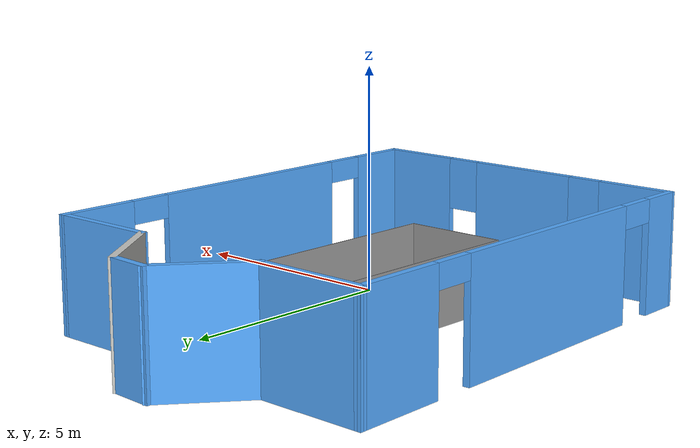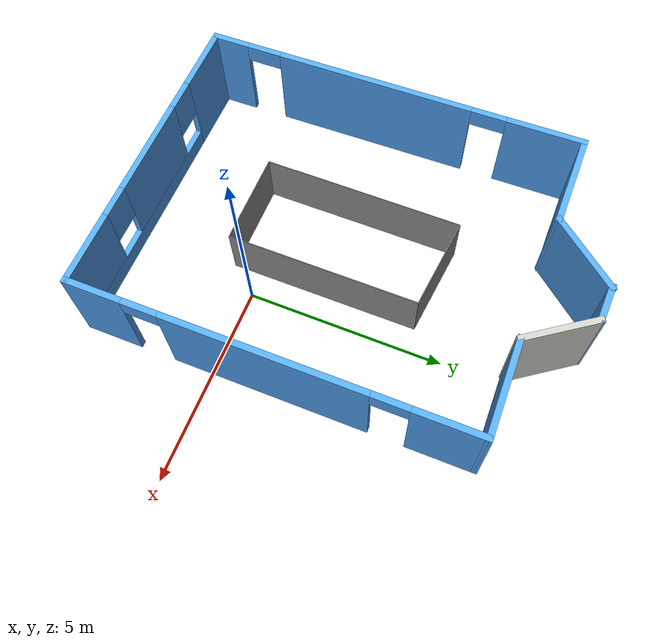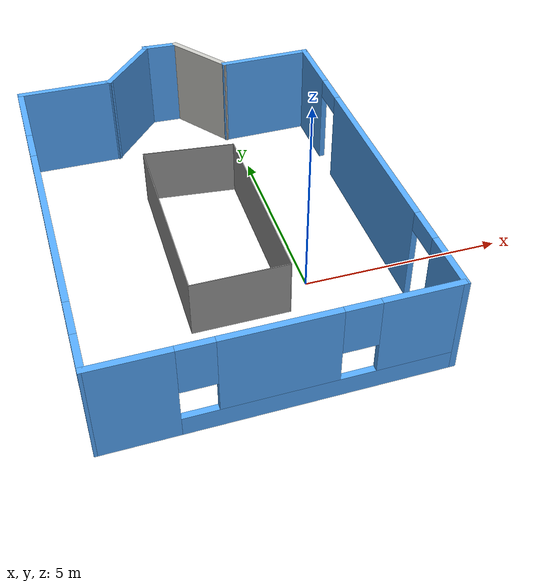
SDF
<?xml version='1.0'?>
<sdf version='1.6'>
  <model name='Proj1Build'>
    <pose frame=''>-1.78125 2.38183 0 0 -0 0</pose>
    <link name='Wall_15'>
      <pose frame=''>-3.86413 -0.782524 0 0 0 -1.54984</pose>
      <visual name='Wall_15_Visual_0'>
        <pose frame=''>-3.98045 0 1.25 0 -0 0</pose>
        <geometry>
          <box>
            <size>2.04275 0.15 2.5</size>
          </box>
        </geometry>
        <material>
          <script>
            <uri>file://media/materials/scripts/gazebo.material</uri>
            <name>Gazebo/Grey</name>
          </script>
          <ambient>0.333333 0.666667 1 1</ambient>
        </material>
        <meta>
          <layer>0</layer>
        </meta>
      </visual>
      <collision name='Wall_15_Collision_0'>
        <geometry>
          <box>
            <size>2.04275 0.15 2.5</size>
          </box>
        </geometry>
        <pose frame=''>-3.98045 0 1.25 0 -0 0</pose>
      </collision>
      <visual name='Wall_15_Visual_1'>
        <pose frame=''>0.516739 0 1.25 0 -0 0</pose>
        <geometry>
          <box>
            <size>5.15162 0.15 2.5</size>
          </box>
        </geometry>
        <material>
          <script>
            <uri>file://media/materials/scripts/gazebo.material</uri>
            <name>Gazebo/Grey</name>
          </script>
          <ambient>0.333333 0.666667 1 1</ambient>
        </material>
        <meta>
          <layer>0</layer>
        </meta>
      </visual>
      <collision name='Wall_15_Collision_1'>
        <geometry>
          <box>
            <size>5.15162 0.15 2.5</size>
          </box>
        </geometry>
        <pose frame=''>0.516739 0 1.25 0 -0 0</pose>
      </collision>
      <visual name='Wall_15_Visual_2'>
        <pose frame=''>4.49718 0 1.25 0 -0 0</pose>
        <geometry>
          <box>
            <size>1.00927 0.15 2.5</size>
          </box>
        </geometry>
        <material>
          <script>
            <uri>file://media/materials/scripts/gazebo.material</uri>
            <name>Gazebo/Grey</name>
          </script>
          <ambient>0.333333 0.666667 1 1</ambient>
        </material>
        <meta>
          <layer>0</layer>
        </meta>
      </visual>
      <collision name='Wall_15_Collision_2'>
        <geometry>
          <box>
            <size>1.00927 0.15 2.5</size>
          </box>
        </geometry>
        <pose frame=''>4.49718 0 1.25 0 -0 0</pose>
      </collision>
      <visual name='Wall_15_Visual_3'>
        <pose frame=''>-2.50907 0 2.25 0 -0 0</pose>
        <geometry>
          <box>
            <size>0.9 0.15 0.5</size>
          </box>
        </geometry>
        <material>
          <script>
            <uri>file://media/materials/scripts/gazebo.material</uri>
            <name>Gazebo/Grey</name>
          </script>
          <ambient>0.333333 0.666667 1 1</ambient>
        </material>
        <meta>
          <layer>0</layer>
        </meta>
      </visual>
      <collision name='Wall_15_Collision_3'>
        <geometry>
          <box>
            <size>0.9 0.15 0.5</size>
          </box>
        </geometry>
        <pose frame=''>-2.50907 0 2.25 0 -0 0</pose>
      </collision>
      <visual name='Wall_15_Visual_4'>
        <pose frame=''>3.54255 0 2.25 0 -0 0</pose>
        <geometry>
          <box>
            <size>0.9 0.15 0.5</size>
          </box>
        </geometry>
        <material>
          <script>
            <uri>file://media/materials/scripts/gazebo.material</uri>
            <name>Gazebo/Grey</name>
          </script>
          <ambient>0.333333 0.666667 1 1</ambient>
        </material>
        <meta>
          <layer>0</layer>
        </meta>
      </visual>
      <collision name='Wall_15_Collision_4'>
        <geometry>
          <box>
            <size>0.9 0.15 0.5</size>
          </box>
        </geometry>
        <pose frame=''>3.54255 0 2.25 0 -0 0</pose>
      </collision>
    </link>
    <link name='Wall_16'>
      <pose frame=''>0.080853 -5.69838 0 0 -0 0.002573</pose>
      <visual name='Wall_16_Visual_0'>
        <pose frame=''>-3.01637 0 1.25 0 -0 0</pose>
        <geometry>
          <box>
            <size>1.80082 0.15 2.5</size>
          </box>
        </geometry>
        <material>
          <script>
            <uri>file://media/materials/scripts/gazebo.material</uri>
            <name>Gazebo/Grey</name>
          </script>
          <ambient>0.333333 0.666667 1 1</ambient>
        </material>
        <meta>
          <layer>0</layer>
        </meta>
      </visual>
      <collision name='Wall_16_Collision_0'>
        <geometry>
          <box>
            <size>1.80082 0.15 2.5</size>
          </box>
        </geometry>
        <pose frame=''>-3.01637 0 1.25 0 -0 0</pose>
      </collision>
      <visual name='Wall_16_Visual_1'>
        <pose frame=''>0.90041 0 0.25 0 -0 0</pose>
        <geometry>
          <box>
            <size>6.03274 0.15 0.5</size>
          </box>
        </geometry>
        <material>
          <script>
            <uri>file://media/materials/scripts/gazebo.material</uri>
            <name>Gazebo/Grey</name>
          </script>
          <ambient>0.333333 0.666667 1 1</ambient>
        </material>
        <meta>
          <layer>0</layer>
        </meta>
      </visual>
      <collision name='Wall_16_Collision_1'>
        <geometry>
          <box>
            <size>6.03274 0.15 0.5</size>
          </box>
        </geometry>
        <pose frame=''>0.90041 0 0.25 0 -0 0</pose>
      </collision>
      <visual name='Wall_16_Visual_2'>
        <pose frame=''>-0.022203 0 1.5 0 -0 0</pose>
        <geometry>
          <box>
            <size>2.58751 0.15 2</size>
          </box>
        </geometry>
        <material>
          <script>
            <uri>file://media/materials/scripts/gazebo.material</uri>
            <name>Gazebo/Grey</name>
          </script>
          <ambient>0.333333 0.666667 1 1</ambient>
        </material>
        <meta>
          <layer>0</layer>
        </meta>
      </visual>
      <collision name='Wall_16_Collision_2'>
        <geometry>
          <box>
            <size>2.58751 0.15 2</size>
          </box>
        </geometry>
        <pose frame=''>-0.022203 0 1.5 0 -0 0</pose>
      </collision>
      <visual name='Wall_16_Visual_3'>
        <pose frame=''>2.99417 0 1.5 0 -0 0</pose>
        <geometry>
          <box>
            <size>1.84523 0.15 2</size>
          </box>
        </geometry>
        <material>
          <script>
            <uri>file://media/materials/scripts/gazebo.material</uri>
            <name>Gazebo/Grey</name>
          </script>
          <ambient>0.333333 0.666667 1 1</ambient>
        </material>
        <meta>
          <layer>0</layer>
        </meta>
      </visual>
      <collision name='Wall_16_Collision_3'>
        <geometry>
          <box>
            <size>1.84523 0.15 2</size>
          </box>
        </geometry>
        <pose frame=''>2.99417 0 1.5 0 -0 0</pose>
      </collision>
      <visual name='Wall_16_Visual_4'>
        <pose frame=''>-1.71596 0 1.9 0 -0 0</pose>
        <geometry>
          <box>
            <size>0.8 0.15 1.2</size>
          </box>
        </geometry>
        <material>
          <script>
            <uri>file://media/materials/scripts/gazebo.material</uri>
            <name>Gazebo/Grey</name>
          </script>
          <ambient>0.333333 0.666667 1 1</ambient>
        </material>
        <meta>
          <layer>0</layer>
        </meta>
      </visual>
      <collision name='Wall_16_Collision_4'>
        <geometry>
          <box>
            <size>0.8 0.15 1.2</size>
          </box>
        </geometry>
        <pose frame=''>-1.71596 0 1.9 0 -0 0</pose>
      </collision>
      <visual name='Wall_16_Visual_5'>
        <pose frame=''>1.67155 0 1.9 0 -0 0</pose>
        <geometry>
          <box>
            <size>0.8 0.15 1.2</size>
          </box>
        </geometry>
        <material>
          <script>
            <uri>file://media/materials/scripts/gazebo.material</uri>
            <name>Gazebo/Grey</name>
          </script>
          <ambient>0.333333 0.666667 1 1</ambient>
        </material>
        <meta>
          <layer>0</layer>
        </meta>
      </visual>
      <collision name='Wall_16_Collision_5'>
        <geometry>
          <box>
            <size>0.8 0.15 1.2</size>
          </box>
        </geometry>
        <pose frame=''>1.67155 0 1.9 0 -0 0</pose>
      </collision>
    </link>
    <link name='Wall_17'>
      <pose frame=''>3.94985 -0.762375 0 0 -0 1.57461</pose>
      <visual name='Wall_17_Visual_0'>
        <pose frame=''>-4.26388 0 1.25 0 -0 0</pose>
        <geometry>
          <box>
            <size>1.47448 0.15 2.5</size>
          </box>
        </geometry>
        <material>
          <script>
            <uri>file://media/materials/scripts/gazebo.material</uri>
            <name>Gazebo/Grey</name>
          </script>
          <ambient>0.333333 0.666667 1 1</ambient>
        </material>
        <meta>
          <layer>0</layer>
        </meta>
      </visual>
      <collision name='Wall_17_Collision_0'>
        <geometry>
          <box>
            <size>1.47448 0.15 2.5</size>
          </box>
        </geometry>
        <pose frame=''>-4.26388 0 1.25 0 -0 0</pose>
      </collision>
      <visual name='Wall_17_Visual_1'>
        <pose frame=''>-0.1434 0 1.25 0 -0 0</pose>
        <geometry>
          <box>
            <size>4.96648 0.15 2.5</size>
          </box>
        </geometry>
        <material>
          <script>
            <uri>file://media/materials/scripts/gazebo.material</uri>
            <name>Gazebo/Grey</name>
          </script>
          <ambient>0.333333 0.666667 1 1</ambient>
        </material>
        <meta>
          <layer>0</layer>
        </meta>
      </visual>
      <collision name='Wall_17_Collision_1'>
        <geometry>
          <box>
            <size>4.96648 0.15 2.5</size>
          </box>
        </geometry>
        <pose frame=''>-0.1434 0 1.25 0 -0 0</pose>
      </collision>
      <visual name='Wall_17_Visual_2'>
        <pose frame=''>4.12048 0 1.25 0 -0 0</pose>
        <geometry>
          <box>
            <size>1.76127 0.15 2.5</size>
          </box>
        </geometry>
        <material>
          <script>
            <uri>file://media/materials/scripts/gazebo.material</uri>
            <name>Gazebo/Grey</name>
          </script>
          <ambient>0.333333 0.666667 1 1</ambient>
        </material>
        <meta>
          <layer>0</layer>
        </meta>
      </visual>
      <collision name='Wall_17_Collision_2'>
        <geometry>
          <box>
            <size>1.76127 0.15 2.5</size>
          </box>
        </geometry>
        <pose frame=''>4.12048 0 1.25 0 -0 0</pose>
      </collision>
      <visual name='Wall_17_Visual_3'>
        <pose frame=''>-3.07664 0 2.25 0 -0 0</pose>
        <geometry>
          <box>
            <size>0.9 0.15 0.5</size>
          </box>
        </geometry>
        <material>
          <script>
            <uri>file://media/materials/scripts/gazebo.material</uri>
            <name>Gazebo/Grey</name>
          </script>
          <ambient>0.333333 0.666667 1 1</ambient>
        </material>
        <meta>
          <layer>0</layer>
        </meta>
      </visual>
      <collision name='Wall_17_Collision_3'>
        <geometry>
          <box>
            <size>0.9 0.15 0.5</size>
          </box>
        </geometry>
        <pose frame=''>-3.07664 0 2.25 0 -0 0</pose>
      </collision>
      <visual name='Wall_17_Visual_4'>
        <pose frame=''>2.78984 0 2.25 0 -0 0</pose>
        <geometry>
          <box>
            <size>0.9 0.15 0.5</size>
          </box>
        </geometry>
        <material>
          <script>
            <uri>file://media/materials/scripts/gazebo.material</uri>
            <name>Gazebo/Grey</name>
          </script>
          <ambient>0.333333 0.666667 1 1</ambient>
        </material>
        <meta>
          <layer>0</layer>
        </meta>
      </visual>
      <collision name='Wall_17_Collision_4'>
        <geometry>
          <box>
            <size>0.9 0.15 0.5</size>
          </box>
        </geometry>
        <pose frame=''>2.78984 0 2.25 0 -0 0</pose>
      </collision>
    </link>
    <link name='Wall_18'>
      <collision name='Wall_18_Collision'>
        <geometry>
          <box>
            <size>2.5 0.15 2.5</size>
          </box>
        </geometry>
        <pose frame=''>0 0 1.25 0 -0 0</pose>
      </collision>
      <visual name='Wall_18_Visual'>
        <pose frame=''>0 0 1.25 0 -0 0</pose>
        <geometry>
          <box>
            <size>2.5 0.15 2.5</size>
          </box>
        </geometry>
        <material>
          <script>
            <uri>file://media/materials/scripts/gazebo.material</uri>
            <name>Gazebo/Grey</name>
          </script>
          <ambient>0.333333 0.666667 1 1</ambient>
        </material>
        <meta>
          <layer>0</layer>
        </meta>
      </visual>
      <pose frame=''>2.75618 4.14846 0 0 0 -3.12859</pose>
    </link>
    <link name='Wall_19'>
      <collision name='Wall_19_Collision'>
        <geometry>
          <box>
            <size>1.99333 0.15 2.5</size>
          </box>
        </geometry>
        <pose frame=''>0 0 1.25 0 -0 0</pose>
      </collision>
      <visual name='Wall_19_Visual'>
        <pose frame=''>0 0 1.25 0 -0 0</pose>
        <geometry>
          <box>
            <size>1.99333 0.15 2.5</size>
          </box>
        </geometry>
        <material>
          <script>
            <uri>file://media/materials/scripts/gazebo.material</uri>
            <name>Gazebo/CeilingTiled</name>
          </script>
          <ambient>0.333333 0.666667 1 1</ambient>
        </material>
        <meta>
          <layer>0</layer>
        </meta>
      </visual>
      <pose frame=''>1.05072 4.88683 0 0 -0 2.1842</pose>
    </link>
    <link name='Wall_20'>
      <collision name='Wall_20_Collision'>
        <geometry>
          <box>
            <size>1 0.15 2.5</size>
          </box>
        </geometry>
        <pose frame=''>0 0 1.25 0 -0 0</pose>
      </collision>
      <visual name='Wall_20_Visual'>
        <pose frame=''>0 0 1.25 0 -0 0</pose>
        <geometry>
          <box>
            <size>1 0.15 2.5</size>
          </box>
        </geometry>
        <material>
          <script>
            <uri>file://media/materials/scripts/gazebo.material</uri>
            <name>Gazebo/Grey</name>
          </script>
          <ambient>0.333333 0.666667 1 1</ambient>
        </material>
        <meta>
          <layer>0</layer>
        </meta>
      </visual>
      <pose frame=''>0.0693 5.65983 0 0 -0 3.09602</pose>
    </link>
    <link name='Wall_21'>
      <collision name='Wall_21_Collision'>
        <geometry>
          <box>
            <size>2.16391 0.15 2.5</size>
          </box>
        </geometry>
        <pose frame=''>0 0 1.25 0 -0 0</pose>
      </collision>
      <visual name='Wall_21_Visual'>
        <pose frame=''>0 0 1.25 0 -0 0</pose>
        <geometry>
          <box>
            <size>2.16391 0.15 2.5</size>
          </box>
        </geometry>
        <material>
          <script>
            <uri>file://media/materials/scripts/gazebo.material</uri>
            <name>Gazebo/Grey</name>
          </script>
          <ambient>0.333333 0.666667 1 1</ambient>
        </material>
        <meta>
          <layer>0</layer>
        </meta>
      </visual>
      <pose frame=''>-0.97317 4.90527 0 0 0 -2.26499</pose>
    </link>
    <link name='Wall_22'>
      <collision name='Wall_22_Collision'>
        <geometry>
          <box>
            <size>2.5 0.15 2.5</size>
          </box>
        </geometry>
        <pose frame=''>0 0 1.25 0 -0 0</pose>
      </collision>
      <visual name='Wall_22_Visual'>
        <pose frame=''>0 0 1.25 0 -0 0</pose>
        <geometry>
          <box>
            <size>2.5 0.15 2.5</size>
          </box>
        </geometry>
        <material>
          <script>
            <uri>file://media/materials/scripts/gazebo.material</uri>
            <name>Gazebo/Grey</name>
          </script>
          <ambient>0.333333 0.666667 1 1</ambient>
        </material>
        <meta>
          <layer>0</layer>
        </meta>
      </visual>
      <pose frame=''>-2.79237 4.13729 0 0 -0 3.13655</pose>
    </link>
    <link name='Wall_28'>
      <collision name='Wall_28_Collision'>
        <geometry>
          <box>
            <size>5.12 0.02 1.5</size>
          </box>
        </geometry>
        <pose frame=''>0 0 0.75 0 -0 0</pose>
      </collision>
      <visual name='Wall_28_Visual'>
        <pose frame=''>0 0 0.75 0 -0 0</pose>
        <geometry>
          <box>
            <size>5.12 0.02 1.5</size>
          </box>
        </geometry>
        <material>
          <script>
            <uri>file://media/materials/scripts/gazebo.material</uri>
            <name>Gazebo/Grey</name>
          </script>
          <ambient>1 1 1 1</ambient>
        </material>
        <meta>
          <layer>0</layer>
        </meta>
      </visual>
      <pose frame=''>-1.21175 -0.582828 0 0 0 -1.5708</pose>
    </link>
    <link name='Wall_29'>
      <collision name='Wall_29_Collision'>
        <geometry>
          <box>
            <size>2.37 0.02 1.5</size>
          </box>
        </geometry>
        <pose frame=''>0 0 0.75 0 -0 0</pose>
      </collision>
      <visual name='Wall_29_Visual'>
        <pose frame=''>0 0 0.75 0 -0 0</pose>
        <geometry>
          <box>
            <size>2.37 0.02 1.5</size>
          </box>
        </geometry>
        <material>
          <script>
            <uri>file://media/materials/scripts/gazebo.material</uri>
            <name>Gazebo/Grey</name>
          </script>
          <ambient>1 1 1 1</ambient>
        </material>
        <meta>
          <layer>0</layer>
        </meta>
      </visual>
      <pose frame=''>-0.03675 -3.13283 0 0 -0 0</pose>
    </link>
    <link name='Wall_30'>
      <collision name='Wall_30_Collision'>
        <geometry>
          <box>
            <size>4.87044 0.02 1.5</size>
          </box>
        </geometry>
        <pose frame=''>0 0 0.75 0 -0 0</pose>
      </collision>
      <visual name='Wall_30_Visual'>
        <pose frame=''>0 0 0.75 0 -0 0</pose>
        <geometry>
          <box>
            <size>4.87044 0.02 1.5</size>
          </box>
        </geometry>
        <material>
          <script>
            <uri>file://media/materials/scripts/gazebo.material</uri>
            <name>Gazebo/Grey</name>
          </script>
          <ambient>1 1 1 1</ambient>
        </material>
        <meta>
          <layer>0</layer>
        </meta>
      </visual>
      <pose frame=''>1.13825 -0.707828 0 0 -0 1.5708</pose>
    </link>
    <link name='Wall_31'>
      <collision name='Wall_31_Collision'>
        <geometry>
          <box>
            <size>2.38326 0.02 1.5</size>
          </box>
        </geometry>
        <pose frame=''>0 0 0.75 0 -0 0</pose>
      </collision>
      <visual name='Wall_31_Visual'>
        <pose frame=''>0 0 0.75 0 -0 0</pose>
        <geometry>
          <box>
            <size>2.38326 0.02 1.5</size>
          </box>
        </geometry>
        <material>
          <script>
            <uri>file://media/materials/scripts/gazebo.material</uri>
            <name>Gazebo/Grey</name>
          </script>
          <ambient>1 1 1 1</ambient>
        </material>
        <meta>
          <layer>0</layer>
        </meta>
      </visual>
      <pose frame=''>-0.03675 1.84217 0 0 -0 3.03561</pose>
    </link>
    <static>1</static>
  </model>
</sdf>
